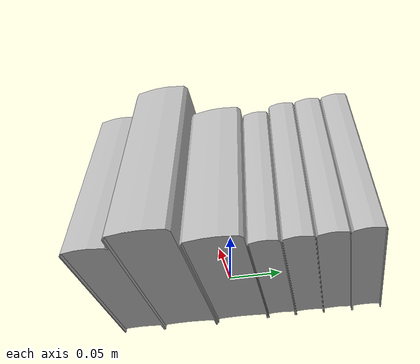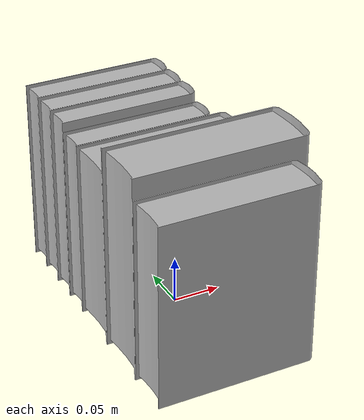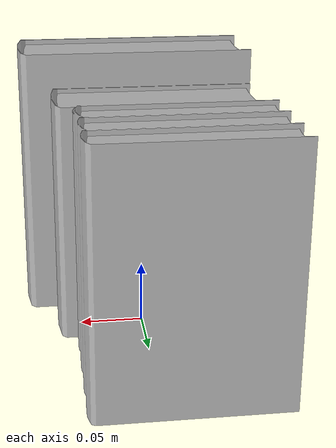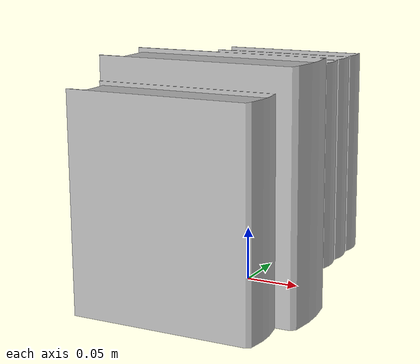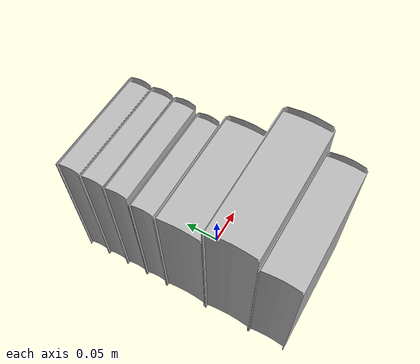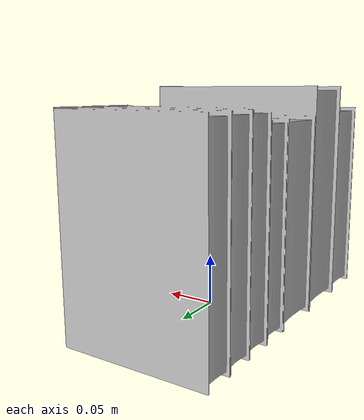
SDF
<?xml version='1.0'?>
<sdf version='1.4'>
  <model name='320'>
    <pose>0 0 0 0 0 0</pose>
    <static>true</static>
    <link name='link'>
      <collision name='collision'>
        <pose>0 0 0 0 0 0</pose>
        <geometry>
          <box>
            <size>0.18708 0.300509 2</size>
          </box>
        </geometry>
      </collision>
      <visual name='visual'>
        <pose>0 0 0 0 0 0</pose>
        <geometry>
          <mesh><uri>model://320/320.dae</uri></mesh>
        </geometry>
      </visual>
    </link>
  </model>
</sdf>
